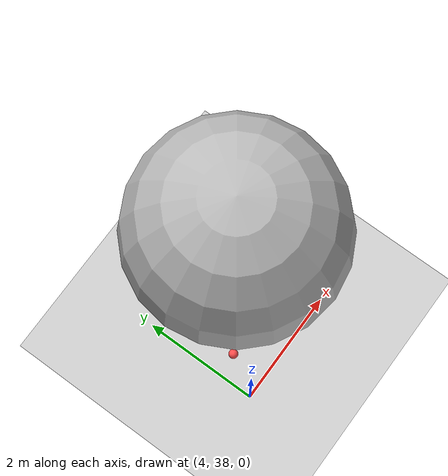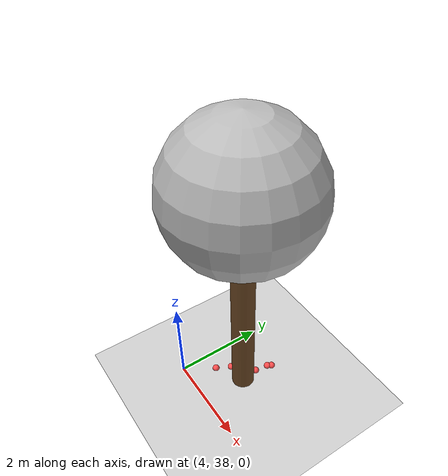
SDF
<sdf version="1.7">
 <world name="default">
  <model name="ground_plane">
   <static>1</static>
   <link name="link">
    <collision name="collision">
     <geometry><plane><normal>0 0 1</normal><size>100 100</size></plane></geometry>
     <surface>
      <contact><collide_bitmask>65535</collide_bitmask></contact>
      <friction><ode><mu>100</mu><mu2>50</mu2></ode></friction>
     </surface>
    </collision>
    <visual name="visual">
     <cast_shadows>0</cast_shadows>
     <geometry><plane><normal>0 0 1</normal><size>100 100</size></plane></geometry>
     <material>
      <script><uri>file://media/materials/scripts/gazebo.material</uri><name>Gazebo/Grey</name></script>
     </material>
    </visual>
   </link>
  </model>
  <model name="tree_simple_17">
   <static>1</static>
   <link name="link">
    <pose>0 0 0.1 0 -0 0</pose>
    <inertial>
     <mass>666</mass>
     <inertia>
      <ixx>0.0861167</ixx>
      <ixy>0</ixy>
      <ixz>0</ixz>
      <iyy>0.0861167</iyy>
      <iyz>0</iyz>
      <izz>0.0861167</izz>
     </inertia>
    </inertial>
    <collision name="collision_trunk">
     <pose>0 0 2 0 -0 0</pose>
     <geometry><cylinder><radius>0.25</radius><length>4</length></cylinder></geometry>
     <surface>
      <contact>
       <poissons_ratio>0.347</poissons_ratio>
       <elastic_modulus>8.8e+09</elastic_modulus>
       <ode><kp>100000</kp><kd>100</kd><max_vel>100</max_vel><min_depth>0.001</min_depth></ode>
      </contact>
      <friction>
       <torsional>
        <coefficient>1</coefficient>
        <use_patch_radius>0</use_patch_radius>
        <surface_radius>0.01</surface_radius>
       </torsional>
      </friction>
     </surface>
    </collision>
    <collision name="collision_treetop">
     <pose>0 0 5.2 0 -0 0</pose>
     <geometry><sphere><radius>1.5</radius></sphere></geometry>
     <surface>
      <contact>
       <poissons_ratio>0.347</poissons_ratio>
       <elastic_modulus>8.8e+09</elastic_modulus>
       <ode><kp>100000</kp><kd>100</kd><max_vel>100</max_vel><min_depth>0.001</min_depth></ode>
      </contact>
      <friction>
       <torsional>
        <coefficient>1</coefficient>
        <use_patch_radius>0</use_patch_radius>
        <surface_radius>0.01</surface_radius>
       </torsional>
      </friction>
     </surface>
    </collision>
    <visual name="trunk">
     <pose>0 0 2 0 -0 0</pose>
     <geometry><cylinder><radius>0.25</radius><length>4</length></cylinder></geometry>
     <material>
      <script>
       <uri>model://tree_simple/scripts</uri>
       <uri>model://tree_simple/materials/textures</uri>
       <name>TreeSimple/Trunk</name>
      </script>
     </material>
    </visual>
    <visual name="treetop">
     <pose>0 0 5.2 0 -0 0</pose>
     <geometry><sphere><radius>1.5</radius></sphere></geometry>
     <material>
      <script>
       <uri>model://tree_simple/scripts</uri>
       <uri>model://tree_simple/materials/textures</uri>
       <name>TreeSimple/Treetop</name>
      </script>
     </material>
    </visual>
   </link>
   <pose>5 39 -0.1 0 -0 0</pose>
  </model>
  <model name="seed_red_66">
   <link name="link">
    <inertial>
     <mass>1</mass>
     <inertia><ixx>0.1</ixx><ixy>0</ixy><ixz>0</ixz><iyy>0.1</iyy><iyz>0</iyz><izz>0.1</izz></inertia>
    </inertial>
    <visual name="visual">
     <geometry><sphere><radius>0.08</radius></sphere></geometry>
     <material>
      <script><name>Gazebo/Grey</name><uri>file://media/materials/scripts/gazebo.material</uri></script>
      <shader type="pixel"><normal_map>__default__</normal_map></shader>
      <ambient>1 0.3 0.3 1</ambient>
      <diffuse>0.7 0.7 0.7 1</diffuse>
      <specular>0.01 0.01 0.01 1</specular>
      <emissive>0 0 0 1</emissive>
     </material>
    </visual>
    <collision name="collision">
     <geometry><sphere><radius>0.0005</radius></sphere></geometry>
     <surface>
      <friction>
       <ode><mu>1</mu><mu2>1</mu2><fdir1>0 0 0</fdir1><slip1>0</slip1><slip2>0</slip2></ode>
       <torsional>
        <coefficient>1</coefficient>
        <patch_radius>0</patch_radius>
        <surface_radius>0</surface_radius>
        <use_patch_radius>1</use_patch_radius>
        <ode><slip>0</slip></ode>
       </torsional>
      </friction>
      <bounce><restitution_coefficient>0</restitution_coefficient><threshold>1e+06</threshold></bounce>
      <contact>
       <collide_without_contact>0</collide_without_contact>
       <collide_without_contact_bitmask>1</collide_without_contact_bitmask>
       <collide_bitmask>1</collide_bitmask>
       <ode>
        <soft_cfm>0</soft_cfm>
        <soft_erp>0.2</soft_erp>
        <kp>1e+13</kp>
        <kd>1</kd>
        <max_vel>0.01</max_vel>
        <min_depth>0</min_depth>
       </ode>
       <bullet>
        <split_impulse>1</split_impulse>
        <split_impulse_penetration_threshold>-0.01</split_impulse_penetration_threshold>
        <soft_cfm>0</soft_cfm>
        <soft_erp>0.2</soft_erp>
        <kp>1e+13</kp>
        <kd>1</kd>
       </bullet>
      </contact>
     </surface>
    </collision>
   </link>
   <static>0</static>
   <pose>5.03361 39.6689 0.0005 0 -0 0</pose>
  </model>
  <model name="seed_red_71">
   <link name="link">
    <inertial>
     <mass>1</mass>
     <inertia><ixx>0.1</ixx><ixy>0</ixy><ixz>0</ixz><iyy>0.1</iyy><iyz>0</iyz><izz>0.1</izz></inertia>
    </inertial>
    <visual name="visual">
     <geometry><sphere><radius>0.08</radius></sphere></geometry>
     <material>
      <script><name>Gazebo/Grey</name><uri>file://media/materials/scripts/gazebo.material</uri></script>
      <shader type="pixel"><normal_map>__default__</normal_map></shader>
      <ambient>1 0.3 0.3 1</ambient>
      <diffuse>0.7 0.7 0.7 1</diffuse>
      <specular>0.01 0.01 0.01 1</specular>
      <emissive>0 0 0 1</emissive>
     </material>
    </visual>
    <collision name="collision">
     <geometry><sphere><radius>0.0005</radius></sphere></geometry>
     <surface>
      <friction>
       <ode><mu>1</mu><mu2>1</mu2><fdir1>0 0 0</fdir1><slip1>0</slip1><slip2>0</slip2></ode>
       <torsional>
        <coefficient>1</coefficient>
        <patch_radius>0</patch_radius>
        <surface_radius>0</surface_radius>
        <use_patch_radius>1</use_patch_radius>
        <ode><slip>0</slip></ode>
       </torsional>
      </friction>
      <bounce><restitution_coefficient>0</restitution_coefficient><threshold>1e+06</threshold></bounce>
      <contact>
       <collide_without_contact>0</collide_without_contact>
       <collide_without_contact_bitmask>1</collide_without_contact_bitmask>
       <collide_bitmask>1</collide_bitmask>
       <ode>
        <soft_cfm>0</soft_cfm>
        <soft_erp>0.2</soft_erp>
        <kp>1e+13</kp>
        <kd>1</kd>
        <max_vel>0.01</max_vel>
        <min_depth>0</min_depth>
       </ode>
       <bullet>
        <split_impulse>1</split_impulse>
        <split_impulse_penetration_threshold>-0.01</split_impulse_penetration_threshold>
        <soft_cfm>0</soft_cfm>
        <soft_erp>0.2</soft_erp>
        <kp>1e+13</kp>
        <kd>1</kd>
       </bullet>
      </contact>
     </surface>
    </collision>
   </link>
   <static>0</static>
   <pose>4.57727 38.9544 0.0005 0 -0 0</pose>
  </model>
  <model name="seed_red_72">
   <link name="link">
    <inertial>
     <mass>1</mass>
     <inertia><ixx>0.1</ixx><ixy>0</ixy><ixz>0</ixz><iyy>0.1</iyy><iyz>0</iyz><izz>0.1</izz></inertia>
    </inertial>
    <visual name="visual">
     <geometry><sphere><radius>0.08</radius></sphere></geometry>
     <material>
      <script><name>Gazebo/Grey</name><uri>file://media/materials/scripts/gazebo.material</uri></script>
      <shader type="pixel"><normal_map>__default__</normal_map></shader>
      <ambient>1 0.3 0.3 1</ambient>
      <diffuse>0.7 0.7 0.7 1</diffuse>
      <specular>0.01 0.01 0.01 1</specular>
      <emissive>0 0 0 1</emissive>
     </material>
    </visual>
    <collision name="collision">
     <geometry><sphere><radius>0.0005</radius></sphere></geometry>
     <surface>
      <friction>
       <ode><mu>1</mu><mu2>1</mu2><fdir1>0 0 0</fdir1><slip1>0</slip1><slip2>0</slip2></ode>
       <torsional>
        <coefficient>1</coefficient>
        <patch_radius>0</patch_radius>
        <surface_radius>0</surface_radius>
        <use_patch_radius>1</use_patch_radius>
        <ode><slip>0</slip></ode>
       </torsional>
      </friction>
      <bounce><restitution_coefficient>0</restitution_coefficient><threshold>1e+06</threshold></bounce>
      <contact>
       <collide_without_contact>0</collide_without_contact>
       <collide_without_contact_bitmask>1</collide_without_contact_bitmask>
       <collide_bitmask>1</collide_bitmask>
       <ode>
        <soft_cfm>0</soft_cfm>
        <soft_erp>0.2</soft_erp>
        <kp>1e+13</kp>
        <kd>1</kd>
        <max_vel>0.01</max_vel>
        <min_depth>0</min_depth>
       </ode>
       <bullet>
        <split_impulse>1</split_impulse>
        <split_impulse_penetration_threshold>-0.01</split_impulse_penetration_threshold>
        <soft_cfm>0</soft_cfm>
        <soft_erp>0.2</soft_erp>
        <kp>1e+13</kp>
        <kd>1</kd>
       </bullet>
      </contact>
     </surface>
    </collision>
   </link>
   <static>0</static>
   <pose>4.40965 38.6366 0.0005 0 -0 0</pose>
  </model>
  <model name="seed_red_74">
   <link name="link">
    <inertial>
     <mass>1</mass>
     <inertia><ixx>0.1</ixx><ixy>0</ixy><ixz>0</ixz><iyy>0.1</iyy><iyz>0</iyz><izz>0.1</izz></inertia>
    </inertial>
    <visual name="visual">
     <geometry><sphere><radius>0.08</radius></sphere></geometry>
     <material>
      <script><name>Gazebo/Grey</name><uri>file://media/materials/scripts/gazebo.material</uri></script>
      <shader type="pixel"><normal_map>__default__</normal_map></shader>
      <ambient>1 0.3 0.3 1</ambient>
      <diffuse>0.7 0.7 0.7 1</diffuse>
      <specular>0.01 0.01 0.01 1</specular>
      <emissive>0 0 0 1</emissive>
     </material>
    </visual>
    <collision name="collision">
     <geometry><sphere><radius>0.0005</radius></sphere></geometry>
     <surface>
      <friction>
       <ode><mu>1</mu><mu2>1</mu2><fdir1>0 0 0</fdir1><slip1>0</slip1><slip2>0</slip2></ode>
       <torsional>
        <coefficient>1</coefficient>
        <patch_radius>0</patch_radius>
        <surface_radius>0</surface_radius>
        <use_patch_radius>1</use_patch_radius>
        <ode><slip>0</slip></ode>
       </torsional>
      </friction>
      <bounce><restitution_coefficient>0</restitution_coefficient><threshold>1e+06</threshold></bounce>
      <contact>
       <collide_without_contact>0</collide_without_contact>
       <collide_without_contact_bitmask>1</collide_without_contact_bitmask>
       <collide_bitmask>1</collide_bitmask>
       <ode>
        <soft_cfm>0</soft_cfm>
        <soft_erp>0.2</soft_erp>
        <kp>1e+13</kp>
        <kd>1</kd>
        <max_vel>0.01</max_vel>
        <min_depth>0</min_depth>
       </ode>
       <bullet>
        <split_impulse>1</split_impulse>
        <split_impulse_penetration_threshold>-0.01</split_impulse_penetration_threshold>
        <soft_cfm>0</soft_cfm>
        <soft_erp>0.2</soft_erp>
        <kp>1e+13</kp>
        <kd>1</kd>
       </bullet>
      </contact>
     </surface>
    </collision>
   </link>
   <static>0</static>
   <pose>5.08337 39.7565 0.0005 0 -0 0</pose>
  </model>
  <model name="seed_red_77">
   <link name="link">
    <inertial>
     <mass>1</mass>
     <inertia><ixx>0.1</ixx><ixy>0</ixy><ixz>0</ixz><iyy>0.1</iyy><iyz>0</iyz><izz>0.1</izz></inertia>
    </inertial>
    <visual name="visual">
     <geometry><sphere><radius>0.08</radius></sphere></geometry>
     <material>
      <script><name>Gazebo/Grey</name><uri>file://media/materials/scripts/gazebo.material</uri></script>
      <shader type="pixel"><normal_map>__default__</normal_map></shader>
      <ambient>1 0.3 0.3 1</ambient>
      <diffuse>0.7 0.7 0.7 1</diffuse>
      <specular>0.01 0.01 0.01 1</specular>
      <emissive>0 0 0 1</emissive>
     </material>
    </visual>
    <collision name="collision">
     <geometry><sphere><radius>0.0005</radius></sphere></geometry>
     <surface>
      <friction>
       <ode><mu>1</mu><mu2>1</mu2><fdir1>0 0 0</fdir1><slip1>0</slip1><slip2>0</slip2></ode>
       <torsional>
        <coefficient>1</coefficient>
        <patch_radius>0</patch_radius>
        <surface_radius>0</surface_radius>
        <use_patch_radius>1</use_patch_radius>
        <ode><slip>0</slip></ode>
       </torsional>
      </friction>
      <bounce><restitution_coefficient>0</restitution_coefficient><threshold>1e+06</threshold></bounce>
      <contact>
       <collide_without_contact>0</collide_without_contact>
       <collide_without_contact_bitmask>1</collide_without_contact_bitmask>
       <collide_bitmask>1</collide_bitmask>
       <ode>
        <soft_cfm>0</soft_cfm>
        <soft_erp>0.2</soft_erp>
        <kp>1e+13</kp>
        <kd>1</kd>
        <max_vel>0.01</max_vel>
        <min_depth>0</min_depth>
       </ode>
       <bullet>
        <split_impulse>1</split_impulse>
        <split_impulse_penetration_threshold>-0.01</split_impulse_penetration_threshold>
        <soft_cfm>0</soft_cfm>
        <soft_erp>0.2</soft_erp>
        <kp>1e+13</kp>
        <kd>1</kd>
       </bullet>
      </contact>
     </surface>
    </collision>
   </link>
   <static>0</static>
   <pose>4.98661 39.3655 0.0005 0 -0 0</pose>
  </model>
 </world>
</sdf>
